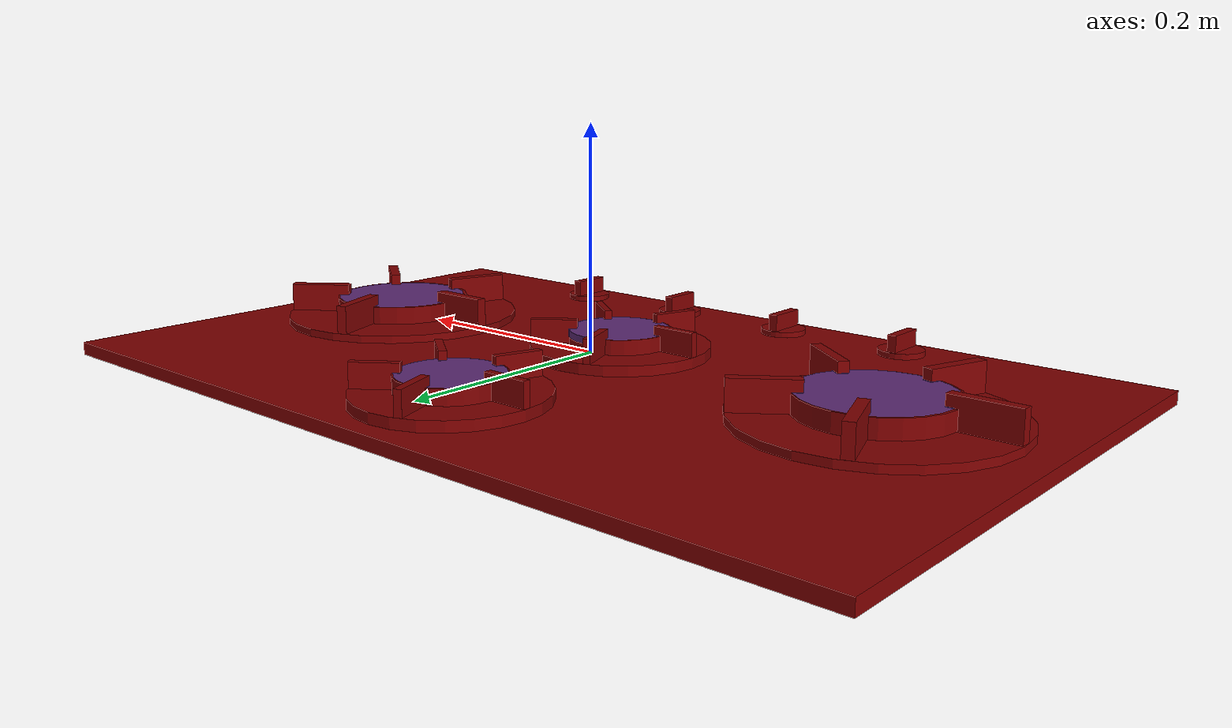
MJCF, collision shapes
<?xml version='1.0' encoding='UTF-8'?>
<mujoco model="model">
  <option timestep="0.002" gravity="0.0 0.0 -9.81"/>
  <compiler angle="radian"/>
  <asset>
    <mesh file="visuals/knob_front_center.obj" name="knob_front_center_vis"/>
    <mesh file="visuals/knob_front_left.obj" name="knob_front_left_vis"/>
    <mesh file="visuals/knob_front_right.obj" name="knob_front_right_vis"/>
    <mesh file="visuals/knob_rear_center.obj" name="knob_rear_center_vis"/>
    <mesh file="visuals/Body001.obj" name="Body001_vis"/>
    <texture file="visuals/T_BC001.png" name="Body001_material" type="2d"/>
    <material name="Body001_material" rgba="1 1 1 1.0" texture="Body001_material" shininess="1" specular="1"/>
    <texture file="visuals/T_BC001.png" name="knob_front_center_material" type="2d"/>
    <material name="knob_front_center_material" rgba="1 1 1 1.0" texture="knob_front_center_material" shininess="1" specular="1"/>
    <texture file="visuals/T_BC001.png" name="knob_front_left_material" type="2d"/>
    <material name="knob_front_left_material" rgba="1 1 1 1.0" texture="knob_front_left_material" shininess="1" specular="1"/>
    <texture file="visuals/T_BC001.png" name="knob_front_right_material" type="2d"/>
    <material name="knob_front_right_material" rgba="1 1 1 1.0" texture="knob_front_right_material" shininess="1" specular="1"/>
    <texture file="visuals/T_BC001.png" name="knob_rear_center_material" type="2d"/>
    <material name="knob_rear_center_material" rgba="1 1 1 1.0" texture="knob_rear_center_material" shininess="1" specular="1"/>
  </asset>
  <default>
    <default class="visual">
      <geom conaffinity="0" contype="0" group="1" type="mesh"/>
    </default>
    <default class="collision">
      <geom group="0" rgba="0.5 0 0 0.5"/>
    </default>
    <default class="spawn">
      <geom group="0" rgba="1 1 1 0.5" contype="0" conaffinity="0"/>
      <site group="0" rgba="1 1 1 0.5"/>
    </default>
    <default class="region">
      <geom group="1" conaffinity="0" contype="0" rgba="0 1 0 0"/>
    </default>
  </default>
  <worldbody>
    <body>
      <body name="object">
        <geom mesh="Body001_vis" type="mesh" solimp="0.998 0.998 0.001" solref="0.001 1" friction="0.95 0.3 0.1" class="visual" material="Body001_material"/>
        <geom class="collision" type="box" pos="5.384208634495735e-09 0.0 -0.016370639204978943" size="0.41076940298080444 0.2562670111656189 0.005932516418397427" quat="1.0 0.0 0.0 0.0" density="1000.0"/>
        <geom class="collision" type="cylinder" pos="-0.2707853615283966 -0.015570033341646194 -0.007739638909697533" size="0.11412598937749863 0.004287595394998789" quat="1.0 0.0 0.0 0.0" density="1000.0"/>
        <geom class="collision" type="cylinder" pos="-0.2707853615283966 -0.015570033341646194 0.004450200125575066" size="0.06470276415348053 0.00862767081707716" quat="1.0 0.0 0.0 0.0" density="1000.0"/>
        <geom class="collision" type="box" pos="-0.35434359312057495 -0.01912807859480381 0.009332746267318726" size="0.004781318828463554 0.029178351163864136 0.013898386619985104" quat="0.7071068286895752 0.0 0.0 -0.7071067094802856" density="1000.0"/>
        <geom class="collision" type="box" pos="-0.2987627685070038 0.06348399817943573 0.009332746267318726" size="0.004781318828463554 0.029178351163864136 0.013898386619985104" quat="0.17364822328090668 0.0 0.0 -0.9848077297210693" density="1000.0"/>
        <geom class="collision" type="box" pos="-0.20516769587993622 0.03644208610057831 0.009332746267318726" size="0.004781318828463554 0.029178347438573837 0.013898386619985104" quat="0.45132511854171753 0.0 0.0 0.8923595547676086" density="1000.0"/>
        <geom class="collision" type="box" pos="-0.2014118731021881 -0.061960432678461075 0.009332746267318726" size="0.004781318828463554 0.029178351163864136 0.013898386619985104" quat="0.8928872346878052 0.0 0.0 0.4502803683280945" density="1000.0"/>
        <geom class="collision" type="box" pos="-0.29290369153022766 -0.09621351957321167 0.009332746267318726" size="0.004781318828463554 0.029178351163864136 0.013898386619985104" quat="0.9868865609169006 0.0 -0.0 -0.16141542792320251" density="1000.0"/>
        <geom class="collision" type="cylinder" pos="0.2705760896205902 -0.014924787916243076 -0.007739638909697533" size="0.11412598937749863 0.004287595394998789" quat="1.0 0.0 0.0 0.0" density="1000.0"/>
        <geom class="collision" type="cylinder" pos="0.2705760896205902 -0.014924787916243076 0.004450200125575066" size="0.06470276415348053 0.00862767081707716" quat="1.0 0.0 0.0 0.0" density="1000.0"/>
        <geom class="collision" type="box" pos="0.18701785802841187 -0.018482832238078117 0.009332746267318726" size="0.004781318828463554 0.029178351163864136 0.013898386619985104" quat="0.7071068286895752 0.0 0.0 -0.7071067094802856" density="1000.0"/>
        <geom class="collision" type="box" pos="0.24259868264198303 0.06412924826145172 0.009332746267318726" size="0.004781318828463554 0.029178351163864136 0.013898386619985104" quat="0.17364822328090668 0.0 0.0 -0.9848077297210693" density="1000.0"/>
        <geom class="collision" type="box" pos="0.3361937701702118 0.037087332457304 0.009332746267318726" size="0.004781318828463554 0.029178347438573837 0.013898386619985104" quat="0.45132511854171753 0.0 0.0 0.8923595547676086" density="1000.0"/>
        <geom class="collision" type="box" pos="0.3399495780467987 -0.06131518632173538 0.009332746267318726" size="0.004781318828463554 0.029178351163864136 0.013898386619985104" quat="0.8928872346878052 0.0 0.0 0.4502803683280945" density="1000.0"/>
        <geom class="collision" type="box" pos="0.24845775961875916 -0.09556826949119568 0.009332746267318726" size="0.004781318828463554 0.029178351163864136 0.013898386619985104" quat="0.9868865609169006 0.0 -0.0 -0.16141542792320251" density="1000.0"/>
        <geom class="collision" type="cylinder" pos="0.005366113036870956 -0.04653722792863846 -0.0049765813164412975" size="0.08193385601043701 0.004693463910371065" quat="1.0 0.0 0.0 0.0" density="1000.0"/>
        <geom class="collision" type="cylinder" pos="0.005366113036870956 -0.04653722792863846 0.006376796402037144" size="0.04645170643925667 0.006923382170498371" quat="1.0 0.0 0.0 0.0" density="1000.0"/>
        <geom class="collision" type="box" pos="-0.054622404277324677 -0.049091633409261703 0.010294858366250992" size="0.0034326266031712294 0.020947856828570366 0.011152935214340687" quat="0.7071068286895752 0.0 0.0 -0.7071067094802856" density="1000.0"/>
        <geom class="collision" type="box" pos="-0.014719555154442787 0.010217607021331787 0.010294858366250992" size="0.003432627534493804 0.020947856828570366 0.011152935214340687" quat="0.17364822328090668 0.0 0.0 -0.9848077297210693" density="1000.0"/>
        <geom class="collision" type="box" pos="0.052474670112133026 -0.009196451865136623 0.010294858366250992" size="0.0034326270688325167 0.020947862416505814 0.011152935214340687" quat="0.45132482051849365 0.0 0.0 0.892359733581543" density="1000.0"/>
        <geom class="collision" type="box" pos="0.055171046406030655 -0.07984203100204468 0.010294855572283268" size="0.003432626836001873 0.020947853103280067 0.011152933351695538" quat="0.8928872346878052 0.0 0.0 0.4502803683280945" density="1000.0"/>
        <geom class="collision" type="box" pos="-0.010513180866837502 -0.10443315654993057 0.010294854640960693" size="0.003432626137509942 0.020947856828570366 0.011152932420372963" quat="0.9868865609169006 0.0 -0.0 -0.16141542792320251" density="1000.0"/>
        <geom class="collision" type="cylinder" pos="0.005366113036870956 0.15838387608528137 -0.0049765813164412975" size="0.08193385601043701 0.004693463910371065" quat="1.0 0.0 0.0 0.0" density="1000.0"/>
        <geom class="collision" type="cylinder" pos="0.005366113036870956 0.15838387608528137 0.006376796402037144" size="0.04645170643925667 0.006923382170498371" quat="1.0 0.0 0.0 0.0" density="1000.0"/>
        <geom class="collision" type="box" pos="-0.054622404277324677 0.15582947432994843 0.010294858366250992" size="0.0034326266031712294 0.020947856828570366 0.011152935214340687" quat="0.7071068286895752 0.0 0.0 -0.7071067094802856" density="1000.0"/>
        <geom class="collision" type="box" pos="-0.014719555154442787 0.21513870358467102 0.010294858366250992" size="0.003432627534493804 0.020947856828570366 0.011152935214340687" quat="0.17364822328090668 0.0 0.0 -0.9848077297210693" density="1000.0"/>
        <geom class="collision" type="box" pos="0.052474670112133026 0.19572465121746063 0.010294858366250992" size="0.0034326270688325167 0.020947862416505814 0.011152935214340687" quat="0.45132482051849365 0.0 0.0 0.892359733581543" density="1000.0"/>
        <geom class="collision" type="box" pos="0.055171046406030655 0.12507908046245575 0.010294855572283268" size="0.003432626836001873 0.020947853103280067 0.011152933351695538" quat="0.8928872346878052 0.0 0.0 0.4502803683280945" density="1000.0"/>
        <geom class="collision" type="box" pos="-0.010513180866837502 0.10048794746398926 0.010294854640960693" size="0.003432626137509942 0.020947856828570366 0.011152932420372963" quat="0.9868865609169006 0.0 -0.0 -0.16141542792320251" density="1000.0"/>
        <body name="knob_front_center">
          <joint axis="0.0 0.0 1.0" pos="-0.06287465989589691 -0.208583801984787 0.0008288200479000807" limited="true" name="knob_front_center_joint" range="0.0 3.6651914291880923" type="hinge" damping="0.05" armature="0.001"/>
          <geom mesh="knob_front_center_vis" type="mesh" solimp="0.998 0.998 0.001" solref="0.001 1" friction="0.95 0.3 0.1" class="visual" material="knob_front_center_material"/>
          <geom class="collision" type="cylinder" pos="-0.06302159279584885 -0.2084987759590149 -0.006088765803724527" size="0.021090611815452576 0.0025346095208078623" quat="1.0 0.0 0.0 0.0" density="1000.0"/>
          <geom class="collision" type="box" pos="-0.06302159279584885 -0.2084987610578537 0.004106687381863594" size="0.004167117644101381 0.0187321025878191 0.0077570416033267975" quat="1.0 0.0 0.0 0.0" density="1000.0"/>
        </body>
        <body name="knob_front_left">
          <joint axis="0.0 0.0 1.0" pos="-0.18841303884983063 -0.208583801984787 0.0013987952843308449" limited="true" name="knob_front_left_joint" range="0.0 3.6651914291880923" type="hinge" damping="0.05" armature="0.001"/>
          <geom mesh="knob_front_left_vis" type="mesh" solimp="0.998 0.998 0.001" solref="0.001 1" friction="0.95 0.3 0.1" class="visual" material="knob_front_left_material"/>
          <geom class="collision" type="cylinder" pos="-0.1881595104932785 -0.2084987759590149 -0.006088765803724527" size="0.021090611815452576 0.0025346095208078623" quat="1.0 0.0 0.0 0.0" density="1000.0"/>
          <geom class="collision" type="box" pos="-0.1881595104932785 -0.2084987610578537 0.004106687381863594" size="0.004186844453215599 0.0187321025878191 0.0077570416033267975" quat="1.0 0.0 0.0 0.0" density="1000.0"/>
        </body>
        <body name="knob_front_right">
          <joint axis="0.0 0.0 1.0" pos="0.1882951706647873 -0.208583801984787 0.0008288200479000807" limited="true" name="knob_front_right_joint" range="0.0 3.6651914291880923" type="hinge" damping="0.05" armature="0.001"/>
          <geom mesh="knob_front_right_vis" type="mesh" solimp="0.998 0.998 0.001" solref="0.001 1" friction="0.95 0.3 0.1" class="visual" material="knob_front_right_material"/>
          <geom class="collision" type="cylinder" pos="0.18821291625499725 -0.2084987759590149 -0.006088765803724527" size="0.021090611815452576 0.0025346095208078623" quat="1.0 0.0 0.0 0.0" density="1000.0"/>
          <geom class="collision" type="box" pos="0.18821291625499725 -0.2084987610578537 0.004106687381863594" size="0.004025190602988005 0.0187321025878191 0.0077570416033267975" quat="1.0 0.0 0.0 0.0" density="1000.0"/>
        </body>
        <body name="knob_rear_center">
          <joint axis="0.0 0.0 1.0" pos="0.06273704767227173 -0.208583801984787 0.0008288200479000807" limited="true" name="knob_rear_center_joint" range="0.0 3.6651914291880923" type="hinge" damping="0.05" armature="0.001"/>
          <geom mesh="knob_rear_center_vis" type="mesh" solimp="0.998 0.998 0.001" solref="0.001 1" friction="0.95 0.3 0.1" class="visual" material="knob_rear_center_material"/>
          <geom class="collision" type="cylinder" pos="0.06293165683746338 -0.2084987759590149 -0.006088765803724527" size="0.021090611815452576 0.0025346095208078623" quat="1.0 0.0 0.0 0.0" density="1000.0"/>
          <geom class="collision" type="box" pos="0.06293165683746338 -0.2084987610578537 0.004106687381863594" size="0.004065839108079672 0.0187321025878191 0.0077570416033267975" quat="1.0 0.0 0.0 0.0" density="1000.0"/>
        </body>
        <site type="cylinder" rgba="0.3 0.4 1 0.5" size="0.06230246648192406 0.0031875143758952618" pos="0.2708933353424072 -0.014208078384399414 0.010083629749715328" name="burner_on_front_right"/>
        <site type="cylinder" rgba="0.3 0.4 1 0.5" size="0.06307169049978256 0.003325136611238122" pos="-0.27011048793792725 -0.015391610562801361 0.01011708565056324" name="burner_on_front_left"/>
        <site type="cylinder" rgba="0.3 0.4 1 0.5" size="0.045072659850120544 0.0032631612848490477" pos="0.0057410672307014465 0.15812158584594727 0.01036119181662798" name="burner_on_rear_center"/>
        <site type="cylinder" rgba="0.3 0.4 1 0.5" size="0.046156782656908035 0.0032241037115454674" pos="0.006177512928843498 -0.046046093106269836 0.010182489641010761" name="burner_on_front_center"/>
        <geom class="region" name="reg_main" type="box" pos="7.450580596923828e-09 0.0 -0.016079124063253403" size="0.41076940298080444 0.2562670111656189 0.006224031560122967"/>
      </body>
    </body>
  </worldbody>
  <actuator>
    <motor name="knob_front_center_joint_actuator" joint="knob_front_center_joint" gear="10"/>
    <motor name="knob_front_left_joint_actuator" joint="knob_front_left_joint" gear="10"/>
    <motor name="knob_front_right_joint_actuator" joint="knob_front_right_joint" gear="10"/>
    <motor name="knob_rear_center_joint_actuator" joint="knob_rear_center_joint" gear="10"/>
  </actuator>
</mujoco>
